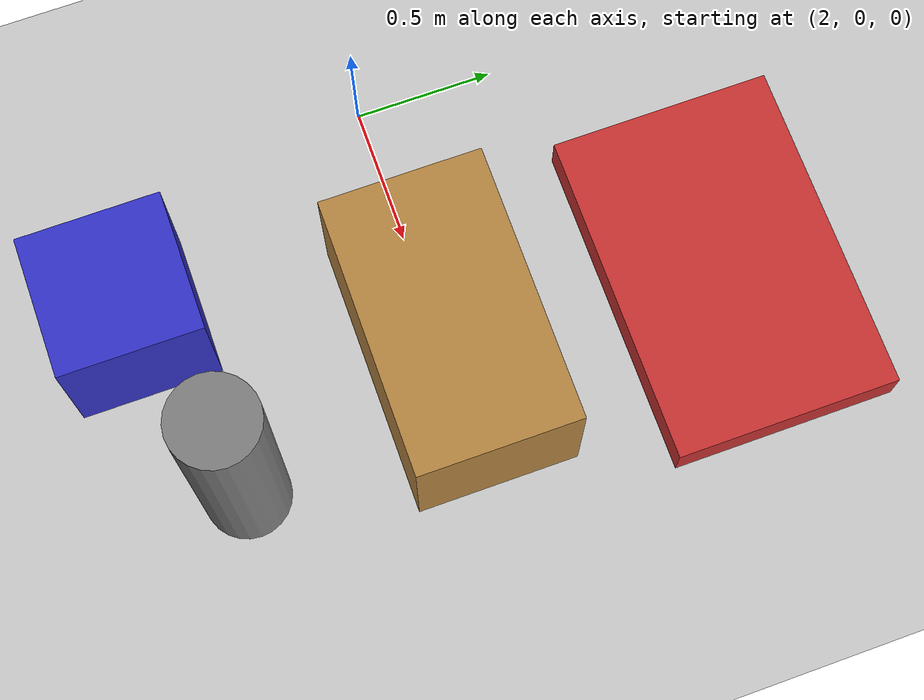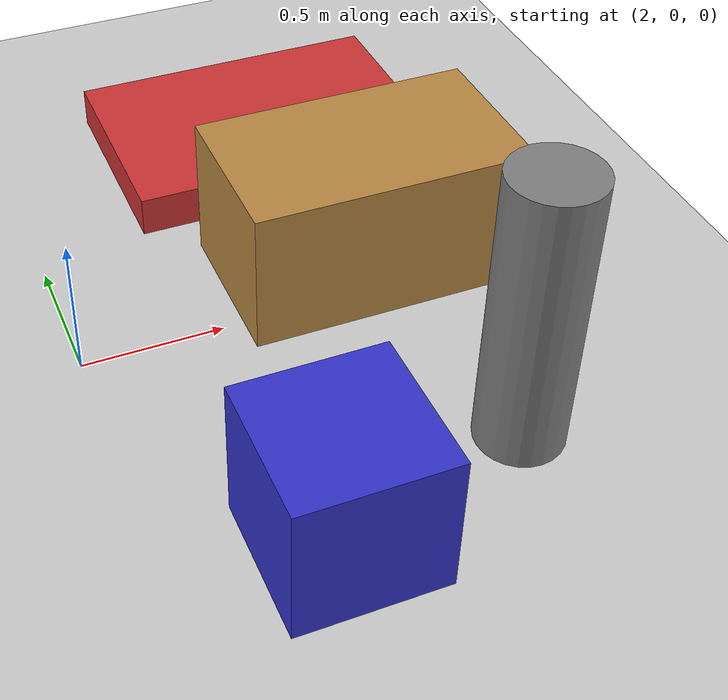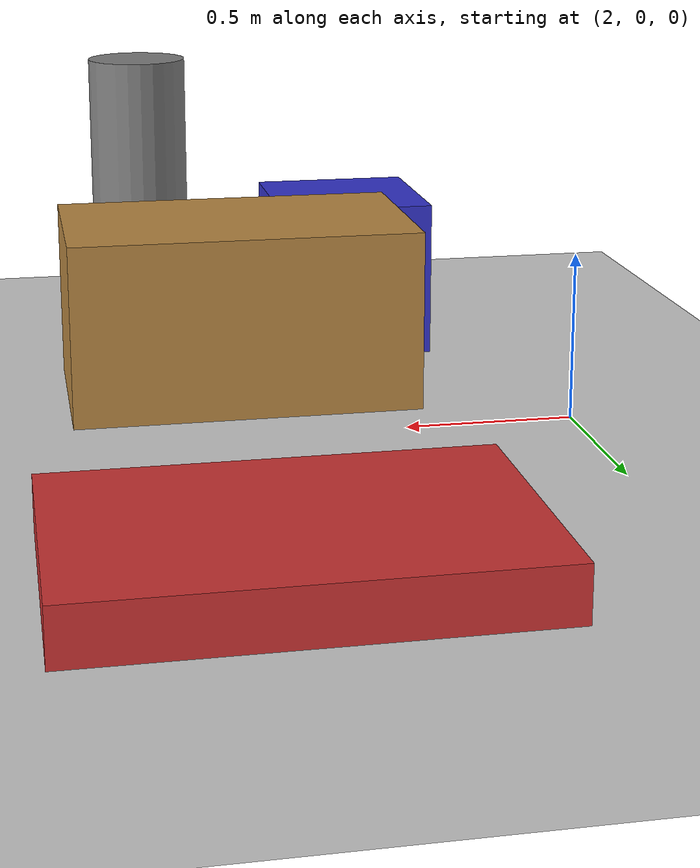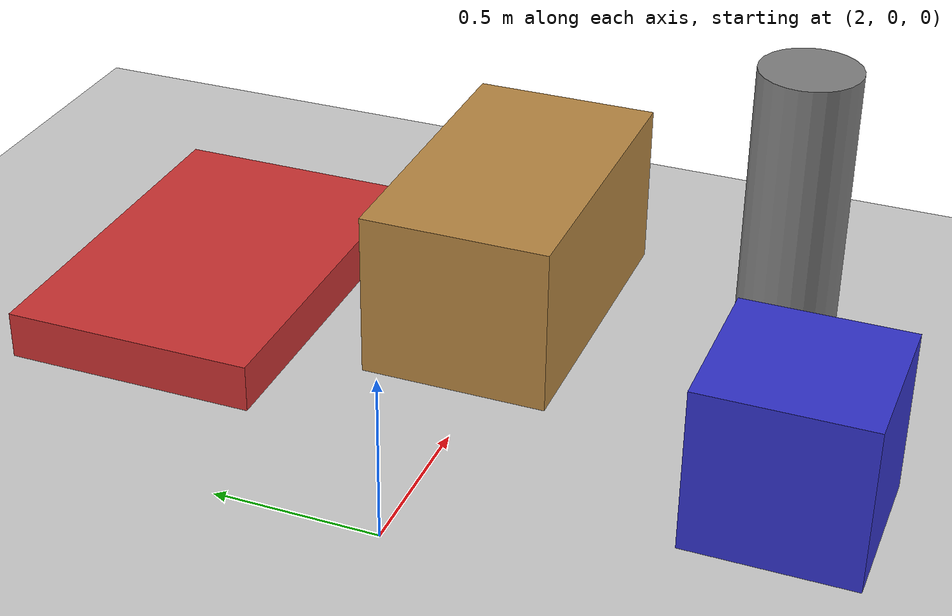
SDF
<sdf version="1.6">
 <world name="pallet_camera_world">
  <include><uri>model://sun</uri></include>
  <include><uri>model://ground_plane</uri></include>
  <model name="carton_box_on_pallet">
   <static>true</static>
   <pose>3.0 0 0.40 0 0 0</pose>
   <link name="link">
    <visual name="visual">
     <geometry><box><size>0.96 0.56 0.50</size></box></geometry>
     <material><ambient>0.72 0.53 0.26 1</ambient><diffuse>0.72 0.53 0.26 1</diffuse></material>
    </visual>
    <collision name="collision"><geometry><box><size>0.96 0.56 0.50</size></box></geometry></collision>
   </link>
  </model>
  <model name="solid_box_pallet_size">
   <static>true</static>
   <pose>3.0 1.0 0.075 0 0 0</pose>
   <link name="link">
    <visual name="visual">
     <geometry><box><size>1.2 0.8 0.15</size></box></geometry>
     <material><ambient>0.8 0.2 0.2 1</ambient><diffuse>0.8 0.2 0.2 1</diffuse></material>
    </visual>
    <collision name="collision"><geometry><box><size>1.2 0.8 0.15</size></box></geometry></collision>
   </link>
  </model>
  <model name="small_crate">
   <static>true</static>
   <pose>2.5 -1.0 0.25 0 0 0</pose>
   <link name="link">
    <visual name="visual">
     <geometry><box><size>0.5 0.5 0.5</size></box></geometry>
     <material><ambient>0.2 0.2 0.8 1</ambient><diffuse>0.2 0.2 0.8 1</diffuse></material>
    </visual>
    <collision name="collision"><geometry><box><size>0.5 0.5 0.5</size></box></geometry></collision>
   </link>
  </model>
  <model name="tall_column">
   <static>true</static>
   <pose>3.2 -0.8 0.5 0 0 0</pose>
   <link name="link">
    <visual name="visual">
     <geometry><cylinder><radius>0.15</radius><length>1.0</length></cylinder></geometry>
     <material><ambient>0.5 0.5 0.5 1</ambient><diffuse>0.5 0.5 0.5 1</diffuse></material>
    </visual>
    <collision name="collision">
     <geometry><cylinder><radius>0.15</radius><length>1.0</length></cylinder></geometry>
    </collision>
   </link>
  </model>
 </world>
</sdf>
